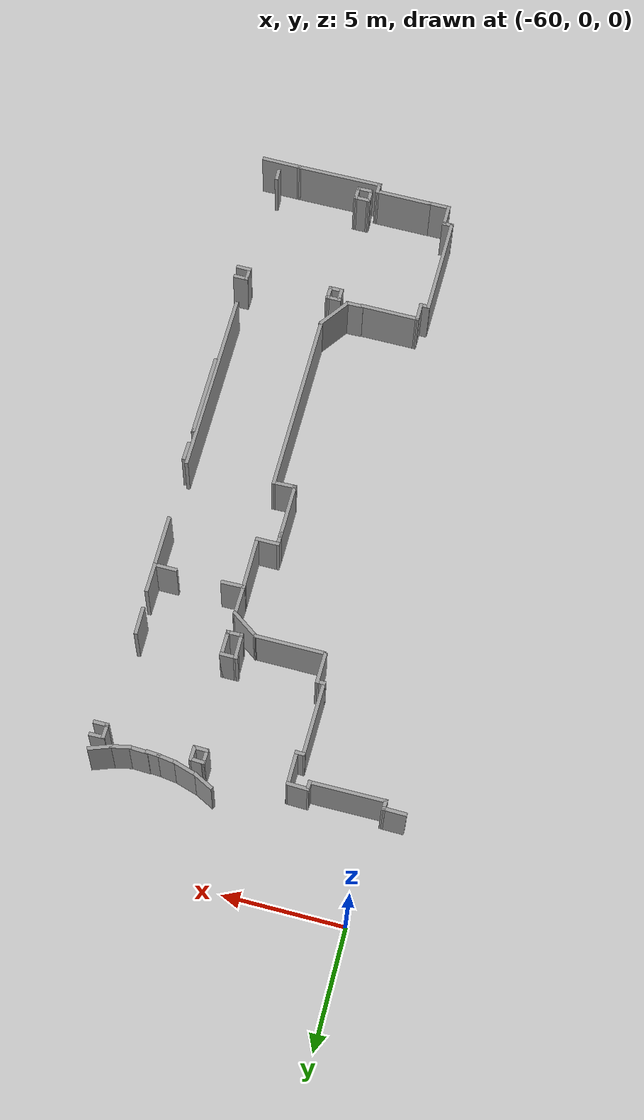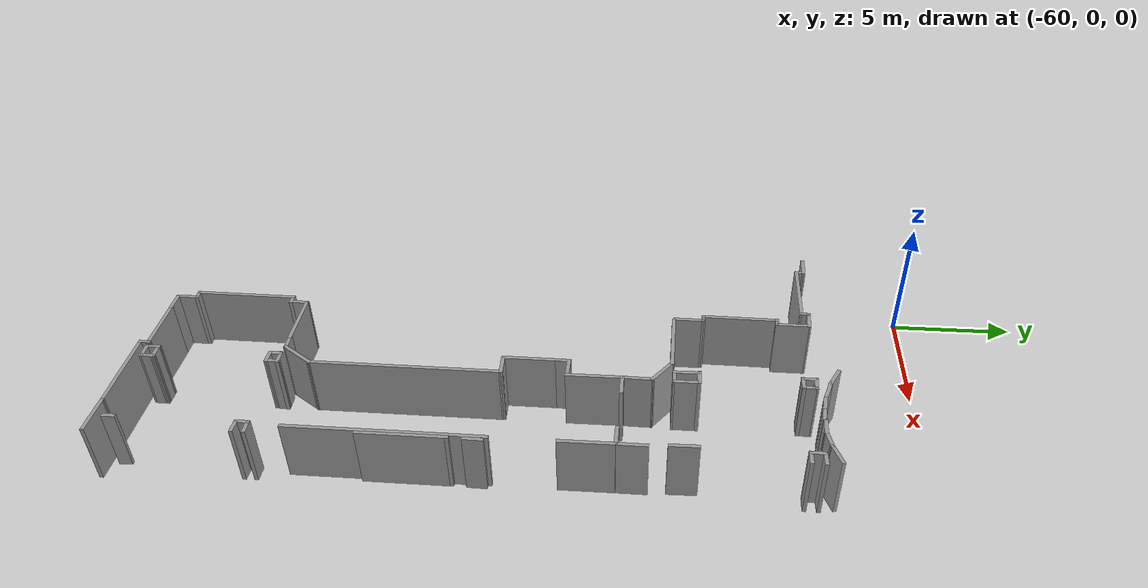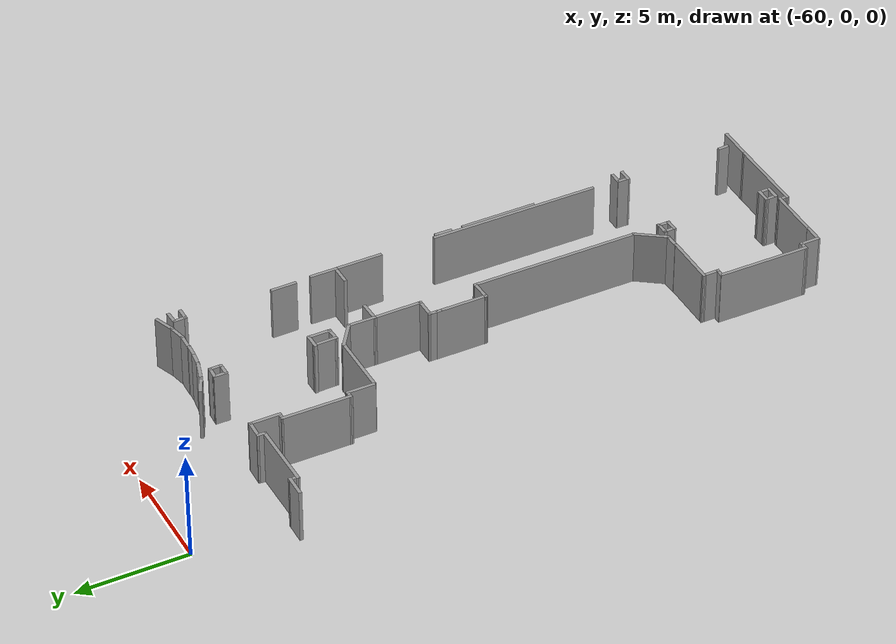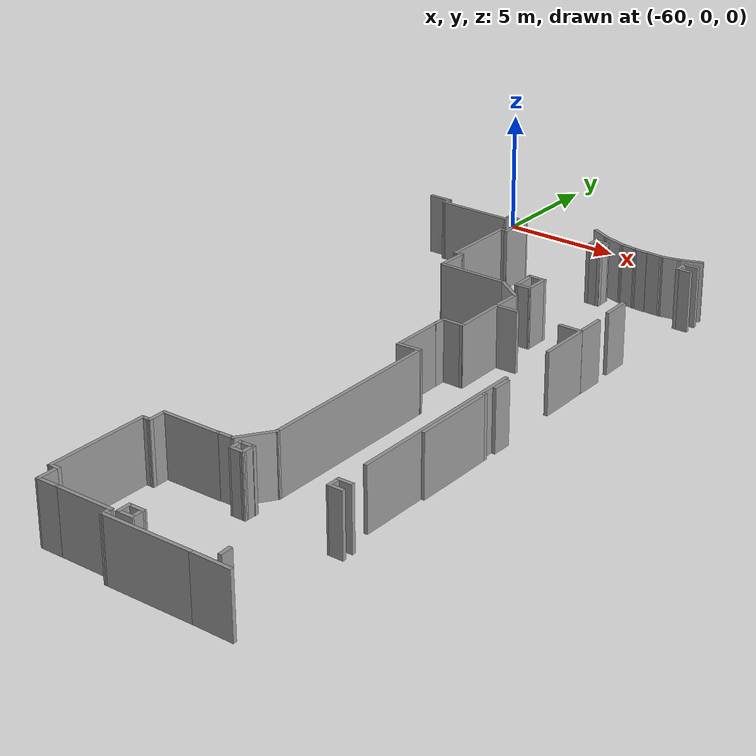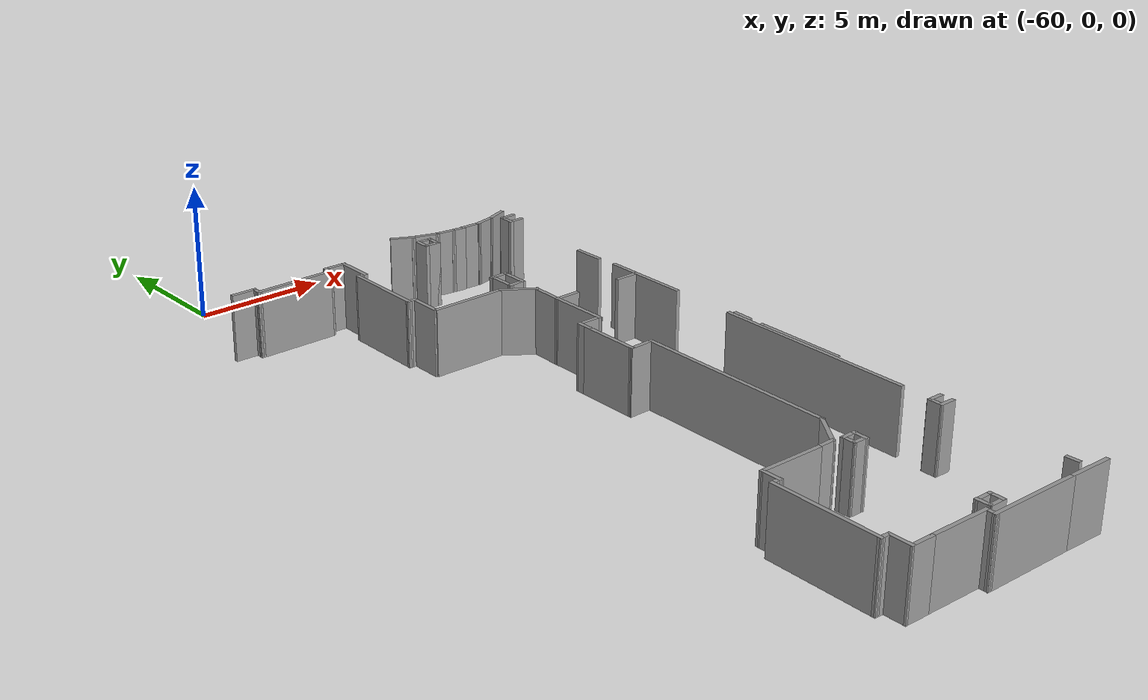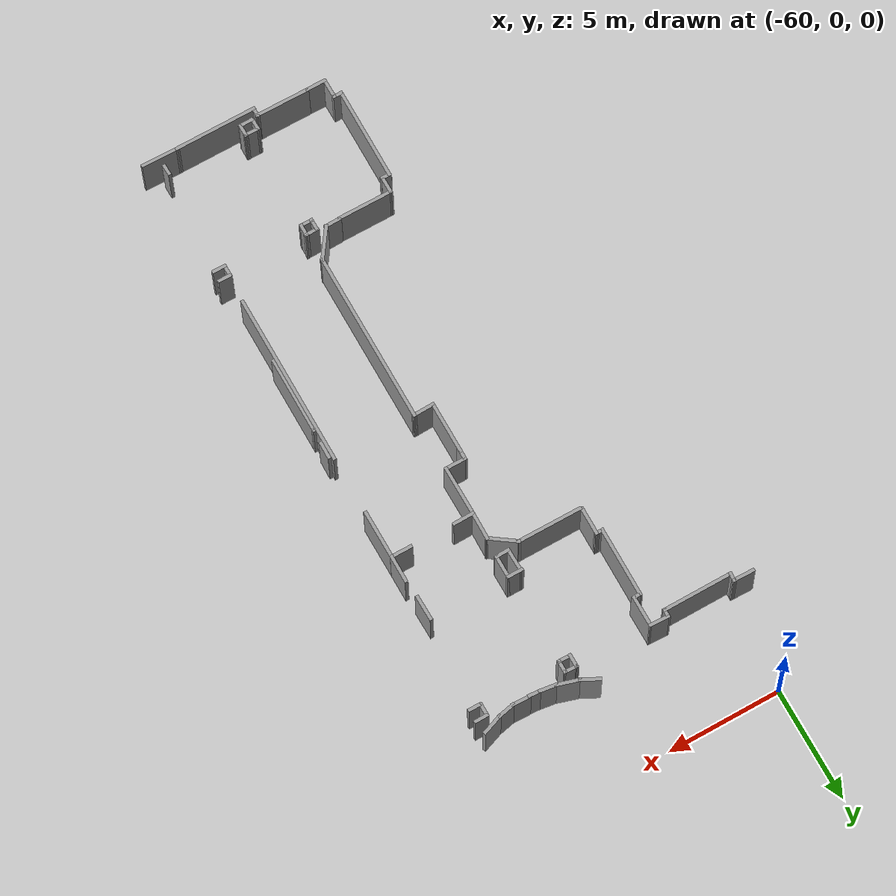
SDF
<sdf version="1.7">
 <model name="TD_n1">
  <pose>-30.6319 -9.22369 0 0 -0 0</pose>
  <link name="Wall_101">
   <collision name="Wall_101_Collision">
    <geometry><box><size>2.29413 0.15 2.5</size></box></geometry>
    <pose>0 0 1.25 0 -0 0</pose>
   </collision>
   <visual name="Wall_101_Visual">
    <pose>0 0 1.25 0 -0 0</pose>
    <geometry><box><size>2.29413 0.15 2.5</size></box></geometry>
    <material>
     <script><uri>file://media/materials/scripts/gazebo.material</uri><name>Gazebo/Grey</name></script>
     <ambient>1 1 1 1</ambient>
    </material>
    <meta><layer>0</layer></meta>
   </visual>
   <pose>-22.0867 -3.57127 0 0 -0 -1.56353</pose>
  </link>
  <link name="Wall_102">
   <collision name="Wall_102_Collision">
    <geometry><box><size>1 0.15 2.5</size></box></geometry>
    <pose>0 0 1.25 0 -0 0</pose>
   </collision>
   <visual name="Wall_102_Visual">
    <pose>0 0 1.25 0 -0 0</pose>
    <geometry><box><size>1 0.15 2.5</size></box></geometry>
    <material>
     <script><uri>file://media/materials/scripts/gazebo.material</uri><name>Gazebo/Grey</name></script>
     <ambient>1 1 1 1</ambient>
    </material>
    <meta><layer>0</layer></meta>
   </visual>
   <pose>-22.5096 -4.64307 0 0 -0 3.14159</pose>
  </link>
  <link name="Wall_103">
   <collision name="Wall_103_Collision">
    <geometry><box><size>0.618308 0.15 2.5</size></box></geometry>
    <pose>0 0 1.25 0 -0 0</pose>
   </collision>
   <visual name="Wall_103_Visual">
    <pose>0 0 1.25 0 -0 0</pose>
    <geometry><box><size>0.618308 0.15 2.5</size></box></geometry>
    <material>
     <script><uri>file://media/materials/scripts/gazebo.material</uri><name>Gazebo/Grey</name></script>
     <ambient>1 1 1 1</ambient>
    </material>
    <meta><layer>0</layer></meta>
   </visual>
   <pose>-22.9351 -4.87717 0 0 -0 -1.57296</pose>
  </link>
  <link name="Wall_116">
   <collision name="Wall_116_Collision">
    <geometry><box><size>1.01534 0.15 2.5</size></box></geometry>
    <pose>0 0 1.25 0 -0 0</pose>
   </collision>
   <visual name="Wall_116_Visual">
    <pose>0 0 1.25 0 -0 0</pose>
    <geometry><box><size>1.01534 0.15 2.5</size></box></geometry>
    <material>
     <script><uri>file://media/materials/scripts/gazebo.material</uri><name>Gazebo/Grey</name></script>
     <ambient>1 1 1 1</ambient>
    </material>
    <meta><layer>0</layer></meta>
   </visual>
   <pose>-22.5071 -7.23995 0 0 -0 -3.10645</pose>
  </link>
  <link name="Wall_117">
   <collision name="Wall_117_Collision">
    <geometry><box><size>2.35837 0.15 2.5</size></box></geometry>
    <pose>0 0 1.25 0 -0 0</pose>
   </collision>
   <visual name="Wall_117_Visual">
    <pose>0 0 1.25 0 -0 0</pose>
    <geometry><box><size>2.35837 0.15 2.5</size></box></geometry>
    <material>
     <script><uri>file://media/materials/scripts/gazebo.material</uri><name>Gazebo/Grey</name></script>
     <ambient>1 1 1 1</ambient>
    </material>
    <meta><layer>0</layer></meta>
   </visual>
   <pose>-22.9404 -6.12055 0 0 -0 1.5714</pose>
  </link>
  <link name="Wall_121">
   <collision name="Wall_121_Collision">
    <geometry><box><size>1.00199 0.15 2.5</size></box></geometry>
    <pose>0 0 1.25 0 -0 0</pose>
   </collision>
   <visual name="Wall_121_Visual">
    <pose>0 0 1.25 0 -0 0</pose>
    <geometry><box><size>1.00199 0.15 2.5</size></box></geometry>
    <material>
     <script><uri>file://media/materials/scripts/gazebo.material</uri><name>Gazebo/Grey</name></script>
     <ambient>1 1 1 1</ambient>
    </material>
    <meta><layer>0</layer></meta>
   </visual>
   <pose>-21.6687 -2.49033 0 0 -0 0.021456</pose>
  </link>
  <link name="Wall_123">
   <collision name="Wall_123_Collision">
    <geometry><box><size>1 0.15 2.5</size></box></geometry>
    <pose>0 0 1.25 0 -0 0</pose>
   </collision>
   <visual name="Wall_123_Visual">
    <pose>0 0 1.25 0 -0 0</pose>
    <geometry><box><size>1 0.15 2.5</size></box></geometry>
    <material>
     <script><uri>file://media/materials/scripts/gazebo.material</uri><name>Gazebo/Grey</name></script>
     <ambient>1 1 1 1</ambient>
    </material>
    <meta><layer>0</layer></meta>
   </visual>
   <pose>-18.8515 -2.5042 0 0 -0 3.14159</pose>
  </link>
  <link name="Wall_125">
   <collision name="Wall_125_Collision">
    <geometry><box><size>1.32197 0.15 2.5</size></box></geometry>
    <pose>0 0 1.25 0 -0 0</pose>
   </collision>
   <visual name="Wall_125_Visual">
    <pose>0 0 1.25 0 -0 0</pose>
    <geometry><box><size>1.32197 0.15 2.5</size></box></geometry>
    <material>
     <script><uri>file://media/materials/scripts/gazebo.material</uri><name>Gazebo/Grey</name></script>
     <ambient>1 1 1 1</ambient>
    </material>
    <meta><layer>0</layer></meta>
   </visual>
   <pose>-22.085 -1.91356 0 0 -0 1.5547</pose>
  </link>
  <link name="Wall_126">
   <collision name="Wall_126_Collision">
    <geometry><box><size>1.41589 0.15 2.5</size></box></geometry>
    <pose>0 0 1.25 0 -0 0</pose>
   </collision>
   <visual name="Wall_126_Visual">
    <pose>0 0 1.25 0 -0 0</pose>
    <geometry><box><size>1.41589 0.15 2.5</size></box></geometry>
    <material>
     <script><uri>file://media/materials/scripts/gazebo.material</uri><name>Gazebo/Grey</name></script>
     <ambient>1 1 1 1</ambient>
    </material>
    <meta><layer>0</layer></meta>
   </visual>
   <pose>-22.5927 -0.962635 0 0 -0 2.52693</pose>
  </link>
  <link name="Wall_127">
   <collision name="Wall_127_Collision">
    <geometry><box><size>2.91799 0.15 2.5</size></box></geometry>
    <pose>0 0 1.25 0 -0 0</pose>
   </collision>
   <visual name="Wall_127_Visual">
    <pose>0 0 1.25 0 -0 0</pose>
    <geometry><box><size>2.91799 0.15 2.5</size></box></geometry>
    <material>
     <script><uri>file://media/materials/scripts/gazebo.material</uri><name>Gazebo/Grey</name></script>
     <ambient>1 1 1 1</ambient>
    </material>
    <meta><layer>0</layer></meta>
   </visual>
   <pose>-24.4938 -0.597625 0 0 -0 3.14159</pose>
  </link>
  <link name="Wall_130">
   <collision name="Wall_130_Collision">
    <geometry><box><size>1.28093 0.15 2.5</size></box></geometry>
    <pose>0 0 1.25 0 -0 0</pose>
   </collision>
   <visual name="Wall_130_Visual">
    <pose>0 0 1.25 0 -0 0</pose>
    <geometry><box><size>1.28093 0.15 2.5</size></box></geometry>
    <material>
     <script><uri>file://media/materials/scripts/gazebo.material</uri><name>Gazebo/Grey</name></script>
     <ambient>1 1 1 1</ambient>
    </material>
    <meta><layer>0</layer></meta>
   </visual>
   <pose>-18.426 -1.93873 0 0 -0 1.56991</pose>
  </link>
  <link name="Wall_170">
   <collision name="Wall_170_Collision">
    <geometry><box><size>1.70137 0.15 2.5</size></box></geometry>
    <pose>0 0 1.25 0 -0 0</pose>
   </collision>
   <visual name="Wall_170_Visual">
    <pose>0 0 1.25 0 -0 0</pose>
    <geometry><box><size>1.70137 0.15 2.5</size></box></geometry>
    <material>
     <script><uri>file://media/materials/scripts/gazebo.material</uri><name>Gazebo/Grey</name></script>
     <ambient>1 1 1 1</ambient>
    </material>
    <meta><layer>0</layer></meta>
   </visual>
   <pose>-18.4818 -21.9447 0 0 -0 3.13179</pose>
  </link>
  <link name="Wall_171">
   <collision name="Wall_171_Collision">
    <geometry><box><size>3.69377 0.15 2.5</size></box></geometry>
    <pose>0 0 1.25 0 -0 0</pose>
   </collision>
   <visual name="Wall_171_Visual">
    <pose>0 0 1.25 0 -0 0</pose>
    <geometry><box><size>3.69377 0.15 2.5</size></box></geometry>
    <material>
     <script><uri>file://media/materials/scripts/gazebo.material</uri><name>Gazebo/Grey</name></script>
     <ambient>1 1 1 1</ambient>
    </material>
    <meta><layer>0</layer></meta>
   </visual>
   <pose>-21.0293 -21.9447 0 0 -0 -3.1373</pose>
  </link>
  <link name="Wall_173">
   <collision name="Wall_173_Collision">
    <geometry><box><size>0.485582 0.15 2.5</size></box></geometry>
    <pose>0 0 1.25 0 -0 0</pose>
   </collision>
   <visual name="Wall_173_Visual">
    <pose>0 0 1.25 0 -0 0</pose>
    <geometry><box><size>0.485582 0.15 2.5</size></box></geometry>
    <material>
     <script><uri>file://media/materials/scripts/gazebo.material</uri><name>Gazebo/Grey</name></script>
     <ambient>1 1 1 1</ambient>
    </material>
    <meta><layer>0</layer></meta>
   </visual>
   <pose>-22.7945 -21.7846 0 0 -0 1.53123</pose>
  </link>
  <link name="Wall_174">
   <collision name="Wall_174_Collision">
    <geometry><box><size>2.42321 0.15 2.5</size></box></geometry>
    <pose>0 0 1.25 0 -0 0</pose>
   </collision>
   <visual name="Wall_174_Visual">
    <pose>0 0 1.25 0 -0 0</pose>
    <geometry><box><size>2.42321 0.15 2.5</size></box></geometry>
    <material>
     <script><uri>file://media/materials/scripts/gazebo.material</uri><name>Gazebo/Grey</name></script>
     <ambient>1 1 1 1</ambient>
    </material>
    <meta><layer>0</layer></meta>
   </visual>
   <pose>-23.9244 -21.614 0 0 -0 3.13897</pose>
  </link>
  <link name="Wall_176">
   <collision name="Wall_176_Collision">
    <geometry><box><size>0.956725 0.15 2.5</size></box></geometry>
    <pose>0 0 1.25 0 -0 0</pose>
   </collision>
   <visual name="Wall_176_Visual">
    <pose>0 0 1.25 0 -0 0</pose>
    <geometry><box><size>0.956725 0.15 2.5</size></box></geometry>
    <material>
     <script><uri>file://media/materials/scripts/gazebo.material</uri><name>Gazebo/Grey</name></script>
     <ambient>1 1 1 1</ambient>
    </material>
    <meta><layer>0</layer></meta>
   </visual>
   <pose>-25.5056 -21.617 0 0 -0 3.14159</pose>
  </link>
  <link name="Wall_177">
   <collision name="Wall_177_Collision">
    <geometry><box><size>0.96258 0.15 2.5</size></box></geometry>
    <pose>0 0 1.25 0 -0 0</pose>
   </collision>
   <visual name="Wall_177_Visual">
    <pose>0 0 1.25 0 -0 0</pose>
    <geometry><box><size>0.96258 0.15 2.5</size></box></geometry>
    <material>
     <script><uri>file://media/materials/scripts/gazebo.material</uri><name>Gazebo/Grey</name></script>
     <ambient>1 1 1 1</ambient>
    </material>
    <meta><layer>0</layer></meta>
   </visual>
   <pose>-25.9102 -21.2107 0 0 -0 1.5739</pose>
  </link>
  <link name="Wall_178">
   <collision name="Wall_178_Collision">
    <geometry><box><size>0.471574 0.15 2.5</size></box></geometry>
    <pose>0 0 1.25 0 -0 0</pose>
   </collision>
   <visual name="Wall_178_Visual">
    <pose>0 0 1.25 0 -0 0</pose>
    <geometry><box><size>0.471574 0.15 2.5</size></box></geometry>
    <material>
     <script><uri>file://media/materials/scripts/gazebo.material</uri><name>Gazebo/Grey</name></script>
     <ambient>1 1 1 1</ambient>
    </material>
    <meta><layer>0</layer></meta>
   </visual>
   <pose>-26.0722 -20.8048 0 0 -0 -3.13885</pose>
  </link>
  <link name="Wall_179">
   <collision name="Wall_179_Collision">
    <geometry><box><size>4.22515 0.15 2.5</size></box></geometry>
    <pose>0 0 1.25 0 -0 0</pose>
   </collision>
   <visual name="Wall_179_Visual">
    <pose>0 0 1.25 0 -0 0</pose>
    <geometry><box><size>4.22515 0.15 2.5</size></box></geometry>
    <material>
     <script><uri>file://media/materials/scripts/gazebo.material</uri><name>Gazebo/Grey</name></script>
     <ambient>1 1 1 1</ambient>
    </material>
    <meta><layer>0</layer></meta>
   </visual>
   <pose>-26.2214 -18.7677 0 0 -0 1.56516</pose>
  </link>
  <link name="Wall_180">
   <collision name="Wall_180_Collision">
    <geometry><box><size>0.46112 0.15 2.5</size></box></geometry>
    <pose>0 0 1.25 0 -0 0</pose>
   </collision>
   <visual name="Wall_180_Visual">
    <pose>0 0 1.25 0 -0 0</pose>
    <geometry><box><size>0.46112 0.15 2.5</size></box></geometry>
    <material>
     <script><uri>file://media/materials/scripts/gazebo.material</uri><name>Gazebo/Grey</name></script>
     <ambient>1 1 1 1</ambient>
    </material>
    <meta><layer>0</layer></meta>
   </visual>
   <pose>-26.0429 -16.7211 0 0 -0 -0.015022</pose>
  </link>
  <link name="Wall_181">
   <collision name="Wall_181_Collision">
    <geometry><box><size>0.827764 0.15 2.5</size></box></geometry>
    <pose>0 0 1.25 0 -0 0</pose>
   </collision>
   <visual name="Wall_181_Visual">
    <pose>0 0 1.25 0 -0 0</pose>
    <geometry><box><size>0.827764 0.15 2.5</size></box></geometry>
    <material>
     <script><uri>file://media/materials/scripts/gazebo.material</uri><name>Gazebo/Grey</name></script>
     <ambient>1 1 1 1</ambient>
    </material>
    <meta><layer>0</layer></meta>
   </visual>
   <pose>-25.894 -16.3846 0 0 -0 1.57564</pose>
  </link>
  <link name="Wall_182">
   <collision name="Wall_182_Collision">
    <geometry><box><size>2.5 0.15 2.5</size></box></geometry>
    <pose>0 0 1.25 0 -0 0</pose>
   </collision>
   <visual name="Wall_182_Visual">
    <pose>0 0 1.25 0 -0 0</pose>
    <geometry><box><size>2.5 0.15 2.5</size></box></geometry>
    <material>
     <script><uri>file://media/materials/scripts/gazebo.material</uri><name>Gazebo/Grey</name></script>
     <ambient>1 1 1 1</ambient>
    </material>
    <meta><layer>0</layer></meta>
   </visual>
   <pose>-24.7206 -16.0457 0 0 -0 0</pose>
  </link>
  <link name="Wall_184">
   <collision name="Wall_184_Collision">
    <geometry><box><size>0.716681 0.15 2.5</size></box></geometry>
    <pose>0 0 1.25 0 -0 0</pose>
   </collision>
   <visual name="Wall_184_Visual">
    <pose>0 0 1.25 0 -0 0</pose>
    <geometry><box><size>0.716681 0.15 2.5</size></box></geometry>
    <material>
     <script><uri>file://media/materials/scripts/gazebo.material</uri><name>Gazebo/Grey</name></script>
     <ambient>1 1 1 1</ambient>
    </material>
    <meta><layer>0</layer></meta>
   </visual>
   <pose>-22.2489 -21.0909 0 0 -0 0.000724</pose>
  </link>
  <link name="Wall_185">
   <collision name="Wall_185_Collision">
    <geometry><box><size>0.60367 0.15 2.5</size></box></geometry>
    <pose>0 0 1.25 0 -0 0</pose>
   </collision>
   <visual name="Wall_185_Visual">
    <pose>0 0 1.25 0 -0 0</pose>
    <geometry><box><size>0.60367 0.15 2.5</size></box></geometry>
    <material>
     <script><uri>file://media/materials/scripts/gazebo.material</uri><name>Gazebo/Grey</name></script>
     <ambient>1 1 1 1</ambient>
    </material>
    <meta><layer>0</layer></meta>
   </visual>
   <pose>-21.9681 -21.3175 0 0 -0 -1.58213</pose>
  </link>
  <link name="Wall_186">
   <collision name="Wall_186_Collision">
    <geometry><box><size>0.682391 0.15 2.5</size></box></geometry>
    <pose>0 0 1.25 0 -0 0</pose>
   </collision>
   <visual name="Wall_186_Visual">
    <pose>0 0 1.25 0 -0 0</pose>
    <geometry><box><size>0.682391 0.15 2.5</size></box></geometry>
    <material>
     <script><uri>file://media/materials/scripts/gazebo.material</uri><name>Gazebo/Grey</name></script>
     <ambient>1 1 1 1</ambient>
    </material>
    <meta><layer>0</layer></meta>
   </visual>
   <pose>-22.2369 -21.5548 0 0 -0 -3.12379</pose>
  </link>
  <link name="Wall_188">
   <collision name="Wall_188_Collision">
    <geometry><box><size>0.572734 0.15 2.5</size></box></geometry>
    <pose>0 0 1.25 0 -0 0</pose>
   </collision>
   <visual name="Wall_188_Visual">
    <pose>0 0 1.25 0 -0 0</pose>
    <geometry><box><size>0.572734 0.15 2.5</size></box></geometry>
    <material>
     <script><uri>file://media/materials/scripts/gazebo.material</uri><name>Gazebo/Grey</name></script>
     <ambient>1 1 1 1</ambient>
    </material>
    <meta><layer>0</layer></meta>
   </visual>
   <pose>-22.529 -21.3024 0 0 -0 -1.5558</pose>
  </link>
  <link name="Wall_193">
   <collision name="Wall_193_Collision">
    <geometry><box><size>0.515631 0.15 2.5</size></box></geometry>
    <pose>0 0 1.25 0 -0 0</pose>
   </collision>
   <visual name="Wall_193_Visual">
    <pose>0 0 1.25 0 -0 0</pose>
    <geometry><box><size>0.515631 0.15 2.5</size></box></geometry>
    <material>
     <script><uri>file://media/materials/scripts/gazebo.material</uri><name>Gazebo/Grey</name></script>
     <ambient>1 1 1 1</ambient>
    </material>
    <meta><layer>0</layer></meta>
   </visual>
   <pose>-18.4544 -21.3234 0 0 -0 1.61838</pose>
  </link>
  <link name="Wall_195">
   <collision name="Wall_195_Collision">
    <geometry><box><size>0.656131 0.15 2.5</size></box></geometry>
    <pose>0 0 1.25 0 -0 0</pose>
   </collision>
   <visual name="Wall_195_Visual">
    <pose>0 0 1.25 0 -0 0</pose>
    <geometry><box><size>0.656131 0.15 2.5</size></box></geometry>
    <material>
     <script><uri>file://media/materials/scripts/gazebo.material</uri><name>Gazebo/Grey</name></script>
     <ambient>1 1 1 1</ambient>
    </material>
    <meta><layer>0</layer></meta>
   </visual>
   <pose>-22.2679 -16.0785 0 0 -0 0.022723</pose>
  </link>
  <link name="Wall_196">
   <collision name="Wall_196_Collision">
    <geometry><box><size>0.606531 0.15 2.5</size></box></geometry>
    <pose>0 0 1.25 0 -0 0</pose>
   </collision>
   <visual name="Wall_196_Visual">
    <pose>0 0 1.25 0 -0 0</pose>
    <geometry><box><size>0.606531 0.15 2.5</size></box></geometry>
    <material>
     <script><uri>file://media/materials/scripts/gazebo.material</uri><name>Gazebo/Grey</name></script>
     <ambient>1 1 1 1</ambient>
    </material>
    <meta><layer>0</layer></meta>
   </visual>
   <pose>-22.0328 -16.301 0 0 -0 -1.57267</pose>
  </link>
  <link name="Wall_197">
   <collision name="Wall_197_Collision">
    <geometry><box><size>0.623737 0.15 2.5</size></box></geometry>
    <pose>0 0 1.25 0 -0 0</pose>
   </collision>
   <visual name="Wall_197_Visual">
    <pose>0 0 1.25 0 -0 0</pose>
    <geometry><box><size>0.623737 0.15 2.5</size></box></geometry>
    <material>
     <script><uri>file://media/materials/scripts/gazebo.material</uri><name>Gazebo/Grey</name></script>
     <ambient>1 1 1 1</ambient>
    </material>
    <meta><layer>0</layer></meta>
   </visual>
   <pose>-22.2701 -16.5281 0 0 -0 3.13662</pose>
  </link>
  <link name="Wall_198">
   <collision name="Wall_198_Collision">
    <geometry><box><size>0.547671 0.15 2.5</size></box></geometry>
    <pose>0 0 1.25 0 -0 0</pose>
   </collision>
   <visual name="Wall_198_Visual">
    <pose>0 0 1.25 0 -0 0</pose>
    <geometry><box><size>0.547671 0.15 2.5</size></box></geometry>
    <material>
     <script><uri>file://media/materials/scripts/gazebo.material</uri><name>Gazebo/Grey</name></script>
     <ambient>1 1 1 1</ambient>
    </material>
    <meta><layer>0</layer></meta>
   </visual>
   <pose>-22.5092 -16.3281 0 0 -0 1.58219</pose>
  </link>
  <link name="Wall_200">
   <collision name="Wall_200_Collision">
    <geometry><box><size>0.630437 0.15 2.5</size></box></geometry>
    <pose>0 0 1.25 0 -0 0</pose>
   </collision>
   <visual name="Wall_200_Visual">
    <pose>0 0 1.25 0 -0 0</pose>
    <geometry><box><size>0.630437 0.15 2.5</size></box></geometry>
    <material>
     <script><uri>file://media/materials/scripts/gazebo.material</uri><name>Gazebo/Grey</name></script>
     <ambient>1 1 1 1</ambient>
    </material>
    <meta><layer>0</layer></meta>
   </visual>
   <pose>-18.269 -16.0509 0 0 -0 0.005917</pose>
  </link>
  <link name="Wall_202">
   <collision name="Wall_202_Collision">
    <geometry><box><size>0.638964 0.15 2.5</size></box></geometry>
    <pose>0 0 1.25 0 -0 0</pose>
   </collision>
   <visual name="Wall_202_Visual">
    <pose>0 0 1.25 0 -0 0</pose>
    <geometry><box><size>0.638964 0.15 2.5</size></box></geometry>
    <material>
     <script><uri>file://media/materials/scripts/gazebo.material</uri><name>Gazebo/Grey</name></script>
     <ambient>1 1 1 1</ambient>
    </material>
    <meta><layer>0</layer></meta>
   </visual>
   <pose>-18.2704 -16.5128 0 0 -0 3.12996</pose>
  </link>
  <link name="Wall_203">
   <collision name="Wall_203_Collision">
    <geometry><box><size>0.593449 0.15 2.5</size></box></geometry>
    <pose>0 0 1.25 0 -0 0</pose>
   </collision>
   <visual name="Wall_203_Visual">
    <pose>0 0 1.25 0 -0 0</pose>
    <geometry><box><size>0.593449 0.15 2.5</size></box></geometry>
    <material>
     <script><uri>file://media/materials/scripts/gazebo.material</uri><name>Gazebo/Grey</name></script>
     <ambient>1 1 1 1</ambient>
    </material>
    <meta><layer>0</layer></meta>
   </visual>
   <pose>-18.5149 -16.2882 0 0 -0 1.5708</pose>
  </link>
  <link name="Wall_205">
   <collision name="Wall_205_Collision">
    <geometry><box><size>1.31255 0.15 2.5</size></box></geometry>
    <pose>0 0 1.25 0 -0 0</pose>
   </collision>
   <visual name="Wall_205_Visual">
    <pose>0 0 1.25 0 -0 0</pose>
    <geometry><box><size>1.31255 0.15 2.5</size></box></geometry>
    <material>
     <script><uri>file://media/materials/scripts/gazebo.material</uri><name>Gazebo/Grey</name></script>
     <ambient>1 1 1 1</ambient>
    </material>
    <meta><layer>0</layer></meta>
   </visual>
   <pose>-25.9437 0.032626 0 0 -0 1.56424</pose>
  </link>
  <link name="Wall_206">
   <collision name="Wall_206_Collision">
    <geometry><box><size>0.4145 0.15 2.5</size></box></geometry>
    <pose>0 0 1.25 0 -0 0</pose>
   </collision>
   <visual name="Wall_206_Visual">
    <pose>0 0 1.25 0 -0 0</pose>
    <geometry><box><size>0.4145 0.15 2.5</size></box></geometry>
    <material>
     <script><uri>file://media/materials/scripts/gazebo.material</uri><name>Gazebo/Grey</name></script>
     <ambient>1 1 1 1</ambient>
    </material>
    <meta><layer>0</layer></meta>
   </visual>
   <pose>-26.0721 0.613886 0 0 -0 3.14159</pose>
  </link>
  <link name="Wall_209">
   <collision name="Wall_209_Collision">
    <geometry><box><size>3.17459 0.15 2.5</size></box></geometry>
    <pose>0 0 1.25 0 -0 0</pose>
   </collision>
   <visual name="Wall_209_Visual">
    <pose>0 0 1.25 0 -0 0</pose>
    <geometry><box><size>3.17459 0.15 2.5</size></box></geometry>
    <material>
     <script><uri>file://media/materials/scripts/gazebo.material</uri><name>Gazebo/Grey</name></script>
     <ambient>1 1 1 1</ambient>
    </material>
    <meta><layer>0</layer></meta>
   </visual>
   <pose>-26.1929 2.12614 0 0 -0 1.56319</pose>
  </link>
  <link name="Wall_210">
   <collision name="Wall_210_Collision">
    <geometry><box><size>0.426 0.15 2.5</size></box></geometry>
    <pose>0 0 1.25 0 -0 0</pose>
   </collision>
   <visual name="Wall_210_Visual">
    <pose>0 0 1.25 0 -0 0</pose>
    <geometry><box><size>0.426 0.15 2.5</size></box></geometry>
    <material>
     <script><uri>file://media/materials/scripts/gazebo.material</uri><name>Gazebo/Grey</name></script>
     <ambient>1 1 1 1</ambient>
    </material>
    <meta><layer>0</layer></meta>
   </visual>
   <pose>-26.0434 3.63839 0 0 -0 0</pose>
  </link>
  <link name="Wall_211">
   <collision name="Wall_211_Collision">
    <geometry><box><size>1.4495 0.15 2.5</size></box></geometry>
    <pose>0 0 1.25 0 -0 0</pose>
   </collision>
   <visual name="Wall_211_Visual">
    <pose>0 0 1.25 0 -0 0</pose>
    <geometry><box><size>1.4495 0.15 2.5</size></box></geometry>
    <material>
     <script><uri>file://media/materials/scripts/gazebo.material</uri><name>Gazebo/Grey</name></script>
     <ambient>1 1 1 1</ambient>
    </material>
    <meta><layer>0</layer></meta>
   </visual>
   <pose>-25.9054 4.28814 0 0 -0 1.5708</pose>
  </link>
  <link name="Wall_212">
   <collision name="Wall_212_Collision">
    <geometry><box><size>0.932338 0.15 2.5</size></box></geometry>
    <pose>0 0 1.25 0 -0 0</pose>
   </collision>
   <visual name="Wall_212_Visual">
    <pose>0 0 1.25 0 -0 0</pose>
    <geometry><box><size>0.932338 0.15 2.5</size></box></geometry>
    <material>
     <script><uri>file://media/materials/scripts/gazebo.material</uri><name>Gazebo/Grey</name></script>
     <ambient>1 1 1 1</ambient>
    </material>
    <meta><layer>0</layer></meta>
   </visual>
   <pose>-26.2964 4.94939 0 0 -0 3.11219</pose>
  </link>
  <link name="Wall_213">
   <collision name="Wall_213_Collision">
    <geometry><box><size>0.43773 0.15 2.5</size></box></geometry>
    <pose>0 0 1.25 0 -0 0</pose>
   </collision>
   <visual name="Wall_213_Visual">
    <pose>0 0 1.25 0 -0 0</pose>
    <geometry><box><size>0.43773 0.15 2.5</size></box></geometry>
    <material>
     <script><uri>file://media/materials/scripts/gazebo.material</uri><name>Gazebo/Grey</name></script>
     <ambient>1 1 1 1</ambient>
    </material>
    <meta><layer>0</layer></meta>
   </visual>
   <pose>-26.6931 4.81714 0 0 -0 -1.61078</pose>
  </link>
  <link name="Wall_215">
   <collision name="Wall_215_Collision">
    <geometry><box><size>3.15334 0.15 2.5</size></box></geometry>
    <pose>0 0 1.25 0 -0 0</pose>
   </collision>
   <visual name="Wall_215_Visual">
    <pose>0 0 1.25 0 -0 0</pose>
    <geometry><box><size>3.15334 0.15 2.5</size></box></geometry>
    <material>
     <script><uri>file://media/materials/scripts/gazebo.material</uri><name>Gazebo/Grey</name></script>
     <ambient>1 1 1 1</ambient>
    </material>
    <meta><layer>0</layer></meta>
   </visual>
   <pose>-28.2005 4.66442 0 0 -0 -3.13562</pose>
  </link>
  <link name="Wall_216">
   <collision name="Wall_216_Collision">
    <geometry><box><size>0.454776 0.15 2.5</size></box></geometry>
    <pose>0 0 1.25 0 -0 0</pose>
   </collision>
   <visual name="Wall_216_Visual">
    <pose>0 0 1.25 0 -0 0</pose>
    <geometry><box><size>0.454776 0.15 2.5</size></box></geometry>
    <material>
     <script><uri>file://media/materials/scripts/gazebo.material</uri><name>Gazebo/Grey</name></script>
     <ambient>1 1 1 1</ambient>
    </material>
    <meta><layer>0</layer></meta>
   </visual>
   <pose>-29.6966 4.80774 0 0 -0 1.534</pose>
  </link>
  <link name="Wall_217">
   <collision name="Wall_217_Collision">
    <geometry><box><size>1.00108 0.15 2.5</size></box></geometry>
    <pose>0 0 1.25 0 -0 0</pose>
   </collision>
   <visual name="Wall_217_Visual">
    <pose>0 0 1.25 0 -0 0</pose>
    <geometry><box><size>1.00108 0.15 2.5</size></box></geometry>
    <material>
     <script><uri>file://media/materials/scripts/gazebo.material</uri><name>Gazebo/Grey</name></script>
     <ambient>1 1 1 1</ambient>
    </material>
    <meta><layer>0</layer></meta>
   </visual>
   <pose>-30.1165 4.96576 0 0 -0 3.12808</pose>
  </link>
  <link name="Wall_246">
   <collision name="Wall_246_Collision">
    <geometry><box><size>1.11566 0.15 2.5</size></box></geometry>
    <pose>0 0 1.25 0 -0 0</pose>
   </collision>
   <visual name="Wall_246_Visual">
    <pose>0 0 1.25 0 -0 0</pose>
    <geometry><box><size>1.11566 0.15 2.5</size></box></geometry>
    <material>
     <script><uri>file://media/materials/scripts/gazebo.material</uri><name>Gazebo/Grey</name></script>
     <ambient>1 1 1 1</ambient>
    </material>
    <meta><layer>0</layer></meta>
   </visual>
   <pose>-22.5727 -0.011495 0 0 -0 -1.54997</pose>
  </link>
  <link name="Wall_247">
   <collision name="Wall_247_Collision">
    <geometry><box><size>0.693439 0.15 2.5</size></box></geometry>
    <pose>0 0 1.25 0 -0 0</pose>
   </collision>
   <visual name="Wall_247_Visual">
    <pose>0 0 1.25 0 -0 0</pose>
    <geometry><box><size>0.693439 0.15 2.5</size></box></geometry>
    <material>
     <script><uri>file://media/materials/scripts/gazebo.material</uri><name>Gazebo/Grey</name></script>
     <ambient>1 1 1 1</ambient>
    </material>
    <meta><layer>0</layer></meta>
   </visual>
   <pose>-22.2912 -0.484164 0 0 -0 0.03702</pose>
  </link>
  <link name="Wall_248">
   <collision name="Wall_248_Collision">
    <geometry><box><size>1.09534 0.15 2.5</size></box></geometry>
    <pose>0 0 1.25 0 -0 0</pose>
   </collision>
   <visual name="Wall_248_Visual">
    <pose>0 0 1.25 0 -0 0</pose>
    <geometry><box><size>1.09534 0.15 2.5</size></box></geometry>
    <material>
     <script><uri>file://media/materials/scripts/gazebo.material</uri><name>Gazebo/Grey</name></script>
     <ambient>1 1 1 1</ambient>
    </material>
    <meta><layer>0</layer></meta>
   </visual>
   <pose>-22.0196 -0.001439 0 0 -0 1.5708</pose>
  </link>
  <link name="Wall_249">
   <collision name="Wall_249_Collision">
    <geometry><box><size>0.753407 0.15 2.5</size></box></geometry>
    <pose>0 0 1.25 0 -0 0</pose>
   </collision>
   <visual name="Wall_249_Visual">
    <pose>0 0 1.25 0 -0 0</pose>
    <geometry><box><size>0.753407 0.15 2.5</size></box></geometry>
    <material>
     <script><uri>file://media/materials/scripts/gazebo.material</uri><name>Gazebo/Grey</name></script>
     <ambient>1 1 1 1</ambient>
    </material>
    <meta><layer>0</layer></meta>
   </visual>
   <pose>-22.3213 0.471231 0 0 -0 3.14159</pose>
  </link>
  <link name="Wall_254">
   <collision name="Wall_254_Collision">
    <geometry><box><size>1.17599 0.15 2.5</size></box></geometry>
    <pose>0 0 1.25 0 -0 0</pose>
   </collision>
   <visual name="Wall_254_Visual">
    <pose>0 0 1.25 0 -0 0</pose>
    <geometry><box><size>1.17599 0.15 2.5</size></box></geometry>
    <material>
     <script><uri>file://media/materials/scripts/gazebo.material</uri><name>Gazebo/Grey</name></script>
     <ambient>1 1 1 1</ambient>
    </material>
    <meta><layer>0</layer></meta>
   </visual>
   <pose>-18.5098 -0.041666 0 0 -0 1.5904</pose>
  </link>
  <link name="Wall_256">
   <collision name="Wall_256_Collision">
    <geometry><box><size>0.653241 0.15 2.5</size></box></geometry>
    <pose>0 0 1.25 0 -0 0</pose>
   </collision>
   <visual name="Wall_256_Visual">
    <pose>0 0 1.25 0 -0 0</pose>
    <geometry><box><size>0.653241 0.15 2.5</size></box></geometry>
    <material>
     <script><uri>file://media/materials/scripts/gazebo.material</uri><name>Gazebo/Grey</name></script>
     <ambient>1 1 1 1</ambient>
    </material>
    <meta><layer>0</layer></meta>
   </visual>
   <pose>-22.5443 4.71376 0 0 -0 -1.5708</pose>
  </link>
  <link name="Wall_257">
   <collision name="Wall_257_Collision">
    <geometry><box><size>0.652839 0.15 2.5</size></box></geometry>
    <pose>0 0 1.25 0 -0 0</pose>
   </collision>
   <visual name="Wall_257_Visual">
    <pose>0 0 1.25 0 -0 0</pose>
    <geometry><box><size>0.652839 0.15 2.5</size></box></geometry>
    <material>
     <script><uri>file://media/materials/scripts/gazebo.material</uri><name>Gazebo/Grey</name></script>
     <ambient>1 1 1 1</ambient>
    </material>
    <meta><layer>0</layer></meta>
   </visual>
   <pose>-22.2928 4.46234 0 0 -0 0</pose>
  </link>
  <link name="Wall_258">
   <collision name="Wall_258_Collision">
    <geometry><box><size>0.632726 0.15 2.5</size></box></geometry>
    <pose>0 0 1.25 0 -0 0</pose>
   </collision>
   <visual name="Wall_258_Visual">
    <pose>0 0 1.25 0 -0 0</pose>
    <geometry><box><size>0.632726 0.15 2.5</size></box></geometry>
    <material>
     <script><uri>file://media/materials/scripts/gazebo.material</uri><name>Gazebo/Grey</name></script>
     <ambient>1 1 1 1</ambient>
    </material>
    <meta><layer>0</layer></meta>
   </visual>
   <pose>-22.0414 4.7037 0 0 -0 1.5708</pose>
  </link>
  <link name="Wall_259">
   <collision name="Wall_259_Collision">
    <geometry><box><size>0.613049 0.15 2.5</size></box></geometry>
    <pose>0 0 1.25 0 -0 0</pose>
   </collision>
   <visual name="Wall_259_Visual">
    <pose>0 0 1.25 0 -0 0</pose>
    <geometry><box><size>0.613049 0.15 2.5</size></box></geometry>
    <material>
     <script><uri>file://media/materials/scripts/gazebo.material</uri><name>Gazebo/Grey</name></script>
     <ambient>1 1 1 1</ambient>
    </material>
    <meta><layer>0</layer></meta>
   </visual>
   <pose>-22.2727 4.95512 0 0 -0 3.09814</pose>
  </link>
  <link name="Wall_261">
   <collision name="Wall_261_Collision">
    <geometry><box><size>0.645294 0.15 2.5</size></box></geometry>
    <pose>0 0 1.25 0 -0 0</pose>
   </collision>
   <visual name="Wall_261_Visual">
    <pose>0 0 1.25 0 -0 0</pose>
    <geometry><box><size>0.645294 0.15 2.5</size></box></geometry>
    <material>
     <script><uri>file://media/materials/scripts/gazebo.material</uri><name>Gazebo/Grey</name></script>
     <ambient>1 1 1 1</ambient>
    </material>
    <meta><layer>0</layer></meta>
   </visual>
   <pose>-18.2663 4.97984 0 0 -0 0.022012</pose>
  </link>
  <link name="Wall_263">
   <collision name="Wall_263_Collision">
    <geometry><box><size>0.633145 0.15 2.5</size></box></geometry>
    <pose>0 0 1.25 0 -0 0</pose>
   </collision>
   <visual name="Wall_263_Visual">
    <pose>0 0 1.25 0 -0 0</pose>
    <geometry><box><size>0.633145 0.15 2.5</size></box></geometry>
    <material>
     <script><uri>file://media/materials/scripts/gazebo.material</uri><name>Gazebo/Grey</name></script>
     <ambient>1 1 1 1</ambient>
    </material>
    <meta><layer>0</layer></meta>
   </visual>
   <pose>-18.2802 4.46234 0 0 -0 3.14159</pose>
  </link>
  <link name="Wall_264">
   <collision name="Wall_264_Collision">
    <geometry><box><size>0.633145 0.15 2.5</size></box></geometry>
    <pose>0 0 1.25 0 -0 0</pose>
   </collision>
   <visual name="Wall_264_Visual">
    <pose>0 0 1.25 0 -0 0</pose>
    <geometry><box><size>0.633145 0.15 2.5</size></box></geometry>
    <material>
     <script><uri>file://media/materials/scripts/gazebo.material</uri><name>Gazebo/Grey</name></script>
     <ambient>1 1 1 1</ambient>
    </material>
    <meta><layer>0</layer></meta>
   </visual>
   <pose>-18.5215 4.7037 0 0 -0 1.5708</pose>
  </link>
  <link name="Wall_274">
   <collision name="Wall_274_Collision">
    <geometry><box><size>0.82889 0.15 2.5</size></box></geometry>
    <pose>0 0 1.25 0 -0 0</pose>
   </collision>
   <visual name="Wall_274_Visual">
    <pose>0 0 1.25 0 -0 0</pose>
    <geometry><box><size>0.82889 0.15 2.5</size></box></geometry>
    <material>
     <script><uri>file://media/materials/scripts/gazebo.material</uri><name>Gazebo/Grey</name></script>
     <ambient>1 1 1 1</ambient>
    </material>
    <meta><layer>0</layer></meta>
   </visual>
   <pose>-19.9562 5.11698 0 0 -0 -0.033885</pose>
  </link>
  <link name="Wall_275">
   <collision name="Wall_275_Collision">
    <geometry><box><size>0.85601 0.15 2.5</size></box></geometry>
    <pose>0 0 1.25 0 -0 0</pose>
   </collision>
   <visual name="Wall_275_Visual">
    <pose>0 0 1.25 0 -0 0</pose>
    <geometry><box><size>0.85601 0.15 2.5</size></box></geometry>
    <material>
     <script><uri>file://media/materials/scripts/gazebo.material</uri><name>Gazebo/Grey</name></script>
     <ambient>1 1 1 1</ambient>
    </material>
    <meta><layer>0</layer></meta>
   </visual>
   <pose>-19.272 5.18023 0 0 -0 0.213369</pose>
  </link>
  <link name="Wall_276">
   <collision name="Wall_276_Collision">
    <geometry><box><size>1.00873 0.15 2.5</size></box></geometry>
    <pose>0 0 1.25 0 -0 0</pose>
   </collision>
   <visual name="Wall_276_Visual">
    <pose>0 0 1.25 0 -0 0</pose>
    <geometry><box><size>1.00873 0.15 2.5</size></box></geometry>
    <material>
     <script><uri>file://media/materials/scripts/gazebo.material</uri><name>Gazebo/Grey</name></script>
     <ambient>1 1 1 1</ambient>
    </material>
    <meta><layer>0</layer></meta>
   </visual>
   <pose>-18.5245 5.40448 0 0 -0 0.355636</pose>
  </link>
  <link name="Wall_317">
   <collision name="Wall_317_Collision">
    <geometry><box><size>0.936889 0.15 2.5</size></box></geometry>
    <pose>0 0 1.25 0 -0 0</pose>
   </collision>
   <visual name="Wall_317_Visual">
    <pose>0 0 1.25 0 -0 0</pose>
    <geometry><box><size>0.936889 0.15 2.5</size></box></geometry>
    <material>
     <script><uri>file://media/materials/scripts/gazebo.material</uri><name>Gazebo/Grey</name></script>
     <ambient>1 1 1 1</ambient>
    </material>
    <meta><layer>0</layer></meta>
   </visual>
   <pose>-22.7392 5.68623 0 0 -0 -0.470183</pose>
  </link>
  <link name="Wall_318">
   <collision name="Wall_318_Collision">
    <geometry><box><size>1.0995 0.15 2.5</size></box></geometry>
    <pose>0 0 1.25 0 -0 0</pose>
   </collision>
   <visual name="Wall_318_Visual">
    <pose>0 0 1.25 0 -0 0</pose>
    <geometry><box><size>1.0995 0.15 2.5</size></box></geometry>
    <material>
     <script><uri>file://media/materials/scripts/gazebo.material</uri><name>Gazebo/Grey</name></script>
     <ambient>1 1 1 1</ambient>
    </material>
    <meta><layer>0</layer></meta>
   </visual>
   <pose>-21.9342 5.36998 0 0 -0 -0.294937</pose>
  </link>
  <link name="Wall_319">
   <collision name="Wall_319_Collision">
    <geometry><box><size>0.834709 0.15 2.5</size></box></geometry>
    <pose>0 0 1.25 0 -0 0</pose>
   </collision>
   <visual name="Wall_319_Visual">
    <pose>0 0 1.25 0 -0 0</pose>
    <geometry><box><size>0.834709 0.15 2.5</size></box></geometry>
    <material>
     <script><uri>file://media/materials/scripts/gazebo.material</uri><name>Gazebo/Grey</name></script>
     <ambient>1 1 1 1</ambient>
    </material>
    <meta><layer>0</layer></meta>
   </visual>
   <pose>-21.1407 5.18598 0 0 -0 -0.134771</pose>
  </link>
  <link name="Wall_320">
   <collision name="Wall_320_Collision">
    <geometry><box><size>0.611292 0.15 2.5</size></box></geometry>
    <pose>0 0 1.25 0 -0 0</pose>
   </collision>
   <visual name="Wall_320_Visual">
    <pose>0 0 1.25 0 -0 0</pose>
    <geometry><box><size>0.611292 0.15 2.5</size></box></geometry>
    <material>
     <script><uri>file://media/materials/scripts/gazebo.material</uri><name>Gazebo/Grey</name></script>
     <ambient>1 1 1 1</ambient>
    </material>
    <meta><layer>0</layer></meta>
   </visual>
   <pose>-20.5715 5.12273 0 0 -0 -0.07486</pose>
  </link>
  <link name="Wall_52">
   <collision name="Wall_52_Collision">
    <geometry><box><size>0.807405 0.15 2.5</size></box></geometry>
    <pose>0 0 1.25 0 -0 0</pose>
   </collision>
   <visual name="Wall_52_Visual">
    <pose>0 0 1.25 0 -0 0</pose>
    <geometry><box><size>0.807405 0.15 2.5</size></box></geometry>
    <material>
     <script><uri>file://media/materials/scripts/gazebo.material</uri><name>Gazebo/Grey</name></script>
     <ambient>1 1 1 1</ambient>
    </material>
    <meta><layer>0</layer></meta>
   </visual>
   <pose>-18.2671 -7.67146 0 0 -0 1.5534</pose>
  </link>
  <link name="Wall_73">
   <collision name="Wall_73_Collision">
    <geometry><box><size>0.15 0.15 2.5</size></box></geometry>
    <pose>0 0 1.25 0 -0 0</pose>
   </collision>
   <visual name="Wall_73_Visual">
    <pose>0 0 1.25 0 -0 0</pose>
    <geometry><box><size>0.15 0.15 2.5</size></box></geometry>
    <material>
     <script><uri>file://media/materials/scripts/gazebo.material</uri><name>Gazebo/Grey</name></script>
     <ambient>1 1 1 1</ambient>
    </material>
    <meta><layer>0</layer></meta>
   </visual>
   <pose>-18.2917 -8.62577 0 0 -0 0</pose>
  </link>
  <link name="Wall_78">
   <collision name="Wall_78_Collision">
    <geometry><box><size>3.5 0.15 2.5</size></box></geometry>
    <pose>0 0 1.25 0 -0 0</pose>
   </collision>
   <visual name="Wall_78_Visual">
    <pose>0 0 1.25 0 -0 0</pose>
    <geometry><box><size>3.5 0.15 2.5</size></box></geometry>
    <material>
     <script><uri>file://media/materials/scripts/gazebo.material</uri><name>Gazebo/Grey</name></script>
     <ambient>1 1 1 1</ambient>
    </material>
    <meta><layer>0</layer></meta>
   </visual>
   <pose>-18.2917 -10.3008 0 0 -0 1.5708</pose>
  </link>
  <link name="Wall_81">
   <collision name="Wall_81_Collision">
    <geometry><box><size>7.75 0.15 2.5</size></box></geometry>
    <pose>0 0 1.25 0 -0 0</pose>
   </collision>
   <visual name="Wall_81_Visual">
    <pose>0 0 1.25 0 -0 0</pose>
    <geometry><box><size>7.75 0.15 2.5</size></box></geometry>
    <material>
     <script><uri>file://media/materials/scripts/gazebo.material</uri><name>Gazebo/Grey</name></script>
     <ambient>1 1 1 1</ambient>
    </material>
    <meta><layer>0</layer></meta>
   </visual>
   <pose>-22.0745 -11.0247 0 0 -0 -1.5708</pose>
  </link>
  <link name="Wall_86">
   <collision name="Wall_86_Collision">
    <geometry><box><size>1.60134 0.15 2.5</size></box></geometry>
    <pose>0 0 1.25 0 -0 0</pose>
   </collision>
   <visual name="Wall_86_Visual">
    <pose>0 0 1.25 0 -0 0</pose>
    <geometry><box><size>1.60134 0.15 2.5</size></box></geometry>
    <material>
     <script><uri>file://media/materials/scripts/gazebo.material</uri><name>Gazebo/Grey</name></script>
     <ambient>1 1 1 1</ambient>
    </material>
    <meta><layer>0</layer></meta>
   </visual>
   <pose>-22.4912 -15.4188 0 0 -0 -2.18251</pose>
  </link>
  <link name="Wall_87">
   <collision name="Wall_87_Collision">
    <geometry><box><size>0.748119 0.15 2.5</size></box></geometry>
    <pose>0 0 1.25 0 -0 0</pose>
   </collision>
   <visual name="Wall_87_Visual">
    <pose>0 0 1.25 0 -0 0</pose>
    <geometry><box><size>0.748119 0.15 2.5</size></box></geometry>
    <material>
     <script><uri>file://media/materials/scripts/gazebo.material</uri><name>Gazebo/Grey</name></script>
     <ambient>1 1 1 1</ambient>
    </material>
    <meta><layer>0</layer></meta>
   </visual>
   <pose>-23.2066 -16.0205 0 0 -0 -3.11628</pose>
  </link>
  <link name="Wall_91">
   <collision name="Wall_91_Collision">
    <geometry><box><size>7.75 0.15 2.5</size></box></geometry>
    <pose>0 0 1.25 0 -0 0</pose>
   </collision>
   <visual name="Wall_91_Visual">
    <pose>0 0 1.25 0 -0 0</pose>
    <geometry><box><size>7.75 0.15 2.5</size></box></geometry>
    <material>
     <script><uri>file://media/materials/scripts/gazebo.material</uri><name>Gazebo/Grey</name></script>
     <ambient>1 1 1 1</ambient>
    </material>
    <meta><layer>0</layer></meta>
   </visual>
   <pose>-18.4181 -10.9997 0 0 -0 1.5708</pose>
  </link>
  <link name="Wall_96">
   <collision name="Wall_96_Collision">
    <geometry><box><size>2.23714 0.15 2.5</size></box></geometry>
    <pose>0 0 1.25 0 -0 0</pose>
   </collision>
   <visual name="Wall_96_Visual">
    <pose>0 0 1.25 0 -0 0</pose>
    <geometry><box><size>2.23714 0.15 2.5</size></box></geometry>
    <material>
     <script><uri>file://media/materials/scripts/gazebo.material</uri><name>Gazebo/Grey</name></script>
     <ambient>1 1 1 1</ambient>
    </material>
    <meta><layer>0</layer></meta>
   </visual>
   <pose>-18.4207 -3.54775 0 0 -0 1.57639</pose>
  </link>
  <static>1</static>
 </model>
</sdf>
